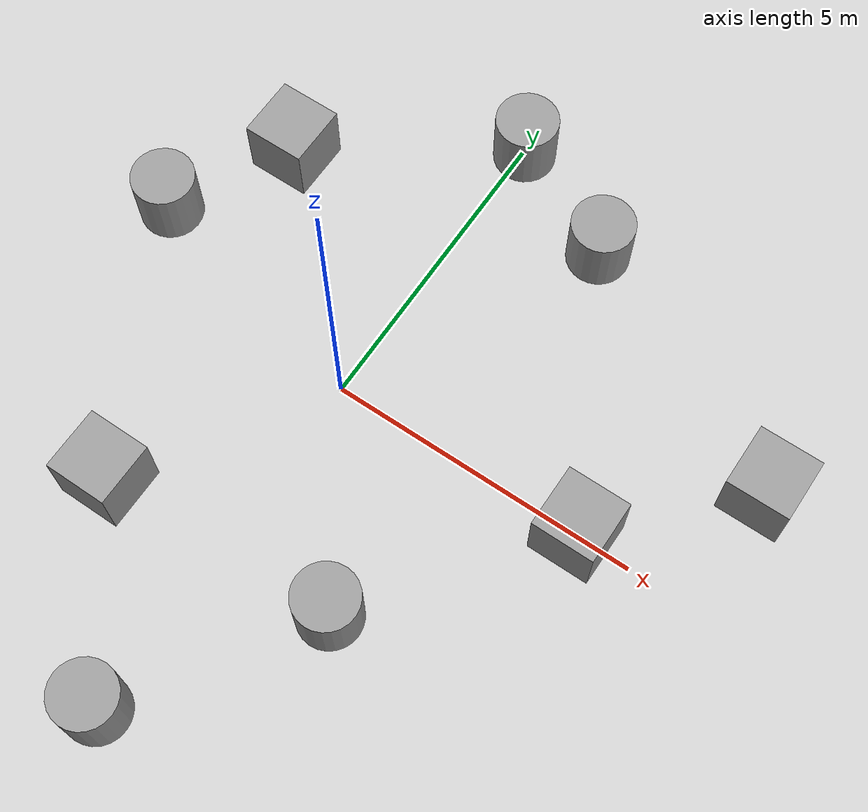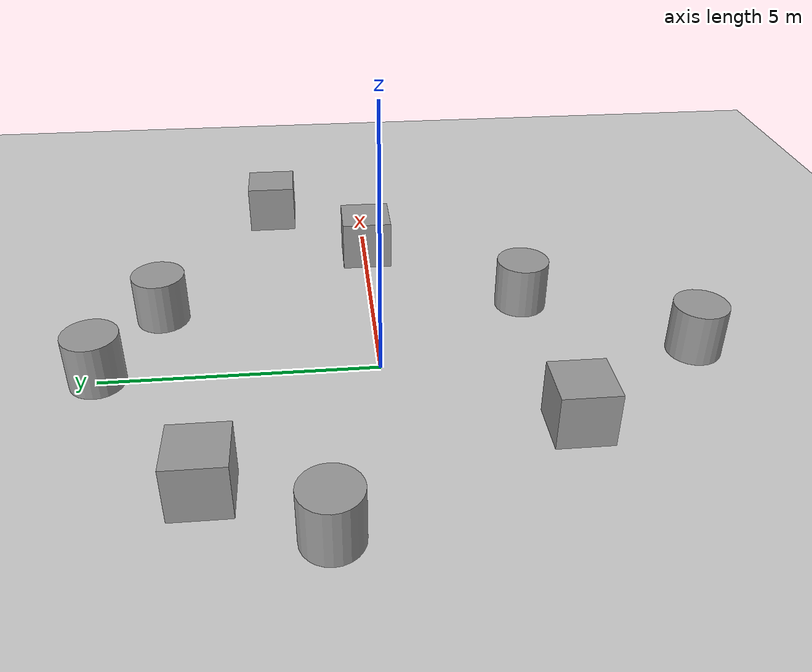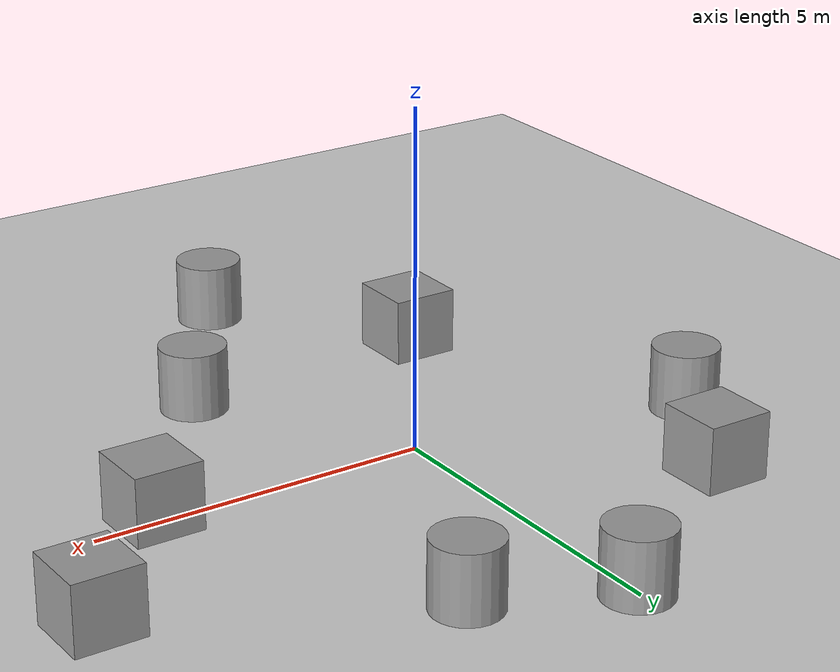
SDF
<sdf version="1.6">
 <world name="default">
  <scene><ambient>0.4 0.4 0.4 1</ambient><background>0.7 0.7 0.7 1</background><shadows>0</shadows></scene>
  <light name="sun" type="directional">
   <cast_shadows>0</cast_shadows>
   <pose>0 0 10 0 -0 0</pose>
   <diffuse>0.8 0.8 0.8 1</diffuse>
   <specular>0.2 0.2 0.2 1</specular>
   <attenuation>
    <range>1000</range>
    <constant>0.9</constant>
    <linear>0.01</linear>
    <quadratic>0.001</quadratic>
   </attenuation>
   <direction>-0.5 0.1 -0.9</direction>
  </light>
  <model name="ground_plane">
   <static>1</static>
   <link name="link">
    <collision name="collision">
     <geometry><plane><normal>0 0 1</normal><size>100 100</size></plane></geometry>
     <surface><friction><ode><mu>100</mu><mu2>50</mu2></ode></friction></surface>
    </collision>
    <visual name="visual">
     <cast_shadows>0</cast_shadows>
     <geometry><plane><normal>0 0 1</normal><size>100 100</size></plane></geometry>
     <material>
      <script><uri>file://media/materials/scripts/gazebo.material</uri><name>Gazebo/Grey</name></script>
     </material>
    </visual>
   </link>
  </model>
  <physics name="default_physics" default="0" type="ode">
   <real_time_update_rate>1000</real_time_update_rate>
   <max_step_size>0.001</max_step_size>
   <real_time_factor>1</real_time_factor>
   <ode>
    <solver>
     <type>quick</type>
     <iters>150</iters>
     <precon_iters>0</precon_iters>
     <sor>1.4</sor>
     <use_dynamic_moi_rescaling>1</use_dynamic_moi_rescaling>
    </solver>
    <constraints>
     <cfm>1e-05</cfm>
     <erp>0.2</erp>
     <contact_max_correcting_vel>2000</contact_max_correcting_vel>
     <contact_surface_layer>0.01</contact_surface_layer>
    </constraints>
   </ode>
  </physics>
  <gravity>0 0 -9.8</gravity>
  <magnetic_field>6e-06 2.3e-05 -4.2e-05</magnetic_field>
  <atmosphere type="adiabatic"/>
  <spherical_coordinates>
   <surface_model>EARTH_WGS84</surface_model>
   <latitude_deg>0</latitude_deg>
   <longitude_deg>0</longitude_deg>
   <elevation>0</elevation>
   <heading_deg>0</heading_deg>
  </spherical_coordinates>
  <model name="unit_box">
   <pose>4.12253 -0.011387 0.5 0 -0 0</pose>
   <link name="link">
    <inertial>
     <mass>1</mass>
     <inertia>
      <ixx>0.166667</ixx>
      <ixy>0</ixy>
      <ixz>0</ixz>
      <iyy>0.166667</iyy>
      <iyz>0</iyz>
      <izz>0.166667</izz>
     </inertia>
    </inertial>
    <collision name="collision"><geometry><box><size>1 1 1</size></box></geometry></collision>
    <visual name="visual">
     <geometry><box><size>1 1 1</size></box></geometry>
     <material>
      <script><name>Gazebo/Grey</name><uri>file://media/materials/scripts/gazebo.material</uri></script>
     </material>
    </visual>
   </link>
  </model>
  <model name="unit_box_0">
   <pose>-2.96707 2.9207 0.5 0 -0 0</pose>
   <link name="link">
    <inertial>
     <mass>1</mass>
     <inertia>
      <ixx>0.166667</ixx>
      <ixy>0</ixy>
      <ixz>0</ixz>
      <iyy>0.166667</iyy>
      <iyz>0</iyz>
      <izz>0.166667</izz>
     </inertia>
    </inertial>
    <collision name="collision"><geometry><box><size>1 1 1</size></box></geometry></collision>
    <visual name="visual">
     <geometry><box><size>1 1 1</size></box></geometry>
     <material>
      <script><name>Gazebo/Grey</name><uri>file://media/materials/scripts/gazebo.material</uri></script>
     </material>
    </visual>
   </link>
  </model>
  <model name="unit_box_1">
   <pose>-1.92854 -3.08416 0.5 0 -0 0</pose>
   <link name="link">
    <inertial>
     <mass>1</mass>
     <inertia>
      <ixx>0.166667</ixx>
      <ixy>0</ixy>
      <ixz>0</ixz>
      <iyy>0.166667</iyy>
      <iyz>0</iyz>
      <izz>0.166667</izz>
     </inertia>
    </inertial>
    <collision name="collision"><geometry><box><size>1 1 1</size></box></geometry></collision>
    <visual name="visual">
     <geometry><box><size>1 1 1</size></box></geometry>
     <material>
      <script><name>Gazebo/Grey</name><uri>file://media/materials/scripts/gazebo.material</uri></script>
     </material>
    </visual>
   </link>
  </model>
  <model name="unit_cylinder">
   <pose>1.97982 4.07522 0.499993 4e-06 4e-06 -0</pose>
   <link name="link">
    <inertial>
     <mass>1</mass>
     <inertia><ixx>0.145833</ixx><ixy>0</ixy><ixz>0</ixz><iyy>0.145833</iyy><iyz>0</iyz><izz>0.125</izz></inertia>
    </inertial>
    <collision name="collision">
     <geometry><cylinder><radius>0.5</radius><length>1</length></cylinder></geometry>
    </collision>
    <visual name="visual">
     <geometry><cylinder><radius>0.5</radius><length>1</length></cylinder></geometry>
     <material>
      <script><name>Gazebo/Grey</name><uri>file://media/materials/scripts/gazebo.material</uri></script>
     </material>
    </visual>
   </link>
  </model>
  <model name="unit_cylinder_0">
   <pose>1.89605 -2.93372 0.499997 -4e-06 -4e-06 -0</pose>
   <link name="link">
    <inertial>
     <mass>1</mass>
     <inertia><ixx>0.145833</ixx><ixy>0</ixy><ixz>0</ixz><iyy>0.145833</iyy><iyz>0</iyz><izz>0.125</izz></inertia>
    </inertial>
    <collision name="collision">
     <geometry><cylinder><radius>0.5</radius><length>1</length></cylinder></geometry>
    </collision>
    <visual name="visual">
     <geometry><cylinder><radius>0.5</radius><length>1</length></cylinder></geometry>
     <material>
      <script><name>Gazebo/Grey</name><uri>file://media/materials/scripts/gazebo.material</uri></script>
     </material>
    </visual>
   </link>
  </model>
  <model name="unit_cylinder_1">
   <pose>0.041556 4.98679 0.499993 4e-06 4e-06 -0</pose>
   <link name="link">
    <inertial>
     <mass>1</mass>
     <inertia><ixx>0.145833</ixx><ixy>0</ixy><ixz>0</ixz><iyy>0.145833</iyy><iyz>0</iyz><izz>0.125</izz></inertia>
    </inertial>
    <collision name="collision">
     <geometry><cylinder><radius>0.5</radius><length>1</length></cylinder></geometry>
    </collision>
    <visual name="visual">
     <geometry><cylinder><radius>0.5</radius><length>1</length></cylinder></geometry>
     <material>
      <script><name>Gazebo/Grey</name><uri>file://media/materials/scripts/gazebo.material</uri></script>
     </material>
    </visual>
   </link>
  </model>
  <model name="unit_cylinder_2">
   <pose>-4.00648 1.02219 0.499997 -4e-06 -4e-06 -0</pose>
   <link name="link">
    <inertial>
     <mass>1</mass>
     <inertia><ixx>0.145833</ixx><ixy>0</ixy><ixz>0</ixz><iyy>0.145833</iyy><iyz>0</iyz><izz>0.125</izz></inertia>
    </inertial>
    <collision name="collision">
     <geometry><cylinder><radius>0.5</radius><length>1</length></cylinder></geometry>
    </collision>
    <visual name="visual">
     <geometry><cylinder><radius>0.5</radius><length>1</length></cylinder></geometry>
     <material>
      <script><name>Gazebo/Grey</name><uri>file://media/materials/scripts/gazebo.material</uri></script>
     </material>
    </visual>
   </link>
  </model>
  <model name="unit_box_2">
   <pose>6.03364 2.01959 0.5 0 -0 0</pose>
   <link name="link">
    <inertial>
     <mass>1</mass>
     <inertia>
      <ixx>0.166667</ixx>
      <ixy>0</ixy>
      <ixz>0</ixz>
      <iyy>0.166667</iyy>
      <iyz>0</iyz>
      <izz>0.166667</izz>
     </inertia>
    </inertial>
    <collision name="collision"><geometry><box><size>1 1 1</size></box></geometry></collision>
    <visual name="visual">
     <geometry><box><size>1 1 1</size></box></geometry>
     <material>
      <script><name>Gazebo/Grey</name><uri>file://media/materials/scripts/gazebo.material</uri></script>
     </material>
    </visual>
   </link>
  </model>
  <model name="unit_cylinder_3">
   <pose>0.034513 -5.78332 0.499997 -4e-06 -4e-06 -0</pose>
   <link name="link">
    <inertial>
     <mass>1</mass>
     <inertia><ixx>0.145833</ixx><ixy>0</ixy><ixz>0</ixz><iyy>0.145833</iyy><iyz>0</iyz><izz>0.125</izz></inertia>
    </inertial>
    <collision name="collision">
     <geometry><cylinder><radius>0.5</radius><length>1</length></cylinder></geometry>
    </collision>
    <visual name="visual">
     <geometry><cylinder><radius>0.5</radius><length>1</length></cylinder></geometry>
     <material>
      <script><name>Gazebo/Grey</name><uri>file://media/materials/scripts/gazebo.material</uri></script>
     </material>
    </visual>
   </link>
  </model>
 </world>
</sdf>
